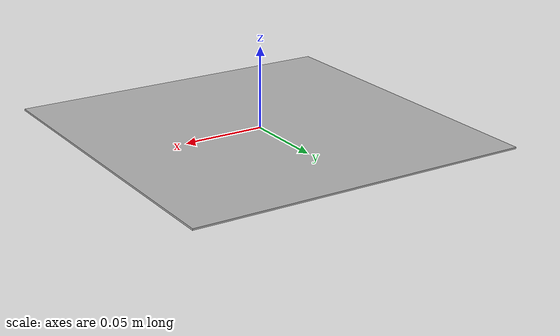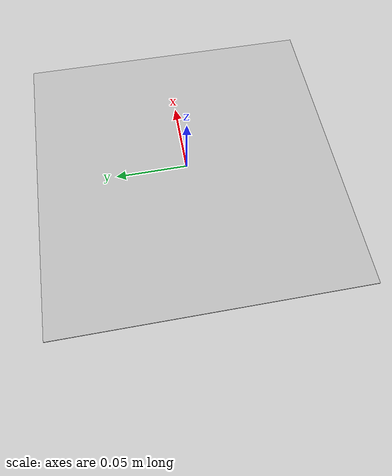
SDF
<?xml version='1.0'?>
<sdf version='1.6'>
    <model name='WorkspaceGrille'>
        <link name='workspace_link'>
            <inertial>
                <mass>1000.0</mass>
                <inertia>
                    <ixx>4.508</ixx>
                    <ixy>0</ixy>
                    <ixz>0</ixz>
                    <iyy>8.184</iyy>
                    <iyz>0</iyz>
                    <izz>11.026</izz>
                </inertia>
                <pose frame=''>0 0 0 0 -0 0</pose>
            </inertial>
            <pose frame=''>0 0 0 0 -0 0</pose>
            <gravity>1</gravity>
            <self_collide>0</self_collide>
            <kinematic>0</kinematic>
            <enable_wind>0</enable_wind>

            <visual name='visual'>
                <cast_shadows>false</cast_shadows>
                <pose frame=''>0 0 0 0 0 0</pose>
                <geometry>
                    <box>
                        <size>0.21 0.21 0.001</size>
                    </box>
                </geometry>
                <material>
                    <script>
                        <uri>media://materials/scripts/workspace.material</uri>
                        <name>Niryo/WorkspaceGrille</name>
                    </script>
                </material>

                <transparency>0</transparency>
                <cast_shadows>1</cast_shadows>
            </visual>
            <collision name='collision'>
                <laser_retro>0</laser_retro>
                <max_contacts>10</max_contacts>
                <pose frame=''>0 0 0 0 -0 0</pose>
                <geometry>
                    <box>
                        <size>0.21 0.21 0.001</size>
                    </box>
                </geometry>
                <surface>
                    <friction>
                        <ode>
                            <mu>1</mu>
                            <mu2>1</mu2>
                            <fdir1>0 0 0</fdir1>
                            <slip1>0</slip1>
                            <slip2>0</slip2>
                        </ode>
                        <torsional>
                            <coefficient>1</coefficient>
                            <patch_radius>0</patch_radius>
                            <surface_radius>0</surface_radius>
                            <use_patch_radius>1</use_patch_radius>
                            <ode>
                                <slip>0</slip>
                            </ode>
                        </torsional>
                    </friction>
                    <bounce>
                        <restitution_coefficient>0</restitution_coefficient>
                        <threshold>1e+06</threshold>
                    </bounce>
                    <contact>
                        <collide_without_contact>0</collide_without_contact>
                        <collide_without_contact_bitmask>1</collide_without_contact_bitmask>
                        <collide_bitmask>1</collide_bitmask>
                        <ode>
                            <soft_cfm>0</soft_cfm>
                            <soft_erp>0.2</soft_erp>
                            <kp>1e+13</kp>
                            <kd>1</kd>
                            <max_vel>0.01</max_vel>
                            <min_depth>0</min_depth>
                        </ode>
                        <bullet>
                            <split_impulse>1</split_impulse>
                            <split_impulse_penetration_threshold>-0.01</split_impulse_penetration_threshold>
                            <soft_cfm>0</soft_cfm>
                            <soft_erp>0.2</soft_erp>
                            <kp>1e+13</kp>
                            <kd>1</kd>
                        </bullet>
                    </contact>
                </surface>
            </collision>
        </link>
        <static>0</static>
        <allow_auto_disable>1</allow_auto_disable>
    </model>
</sdf>
